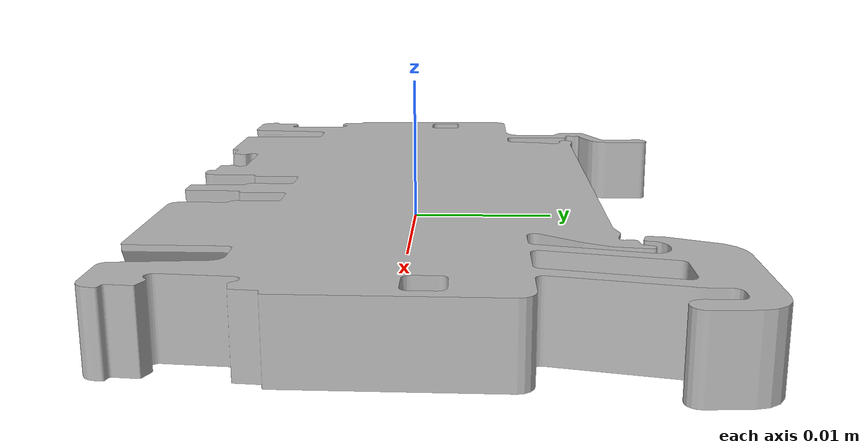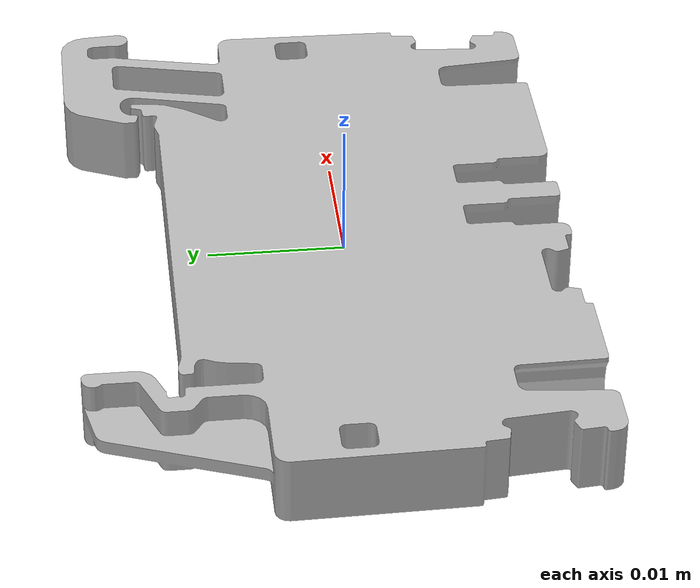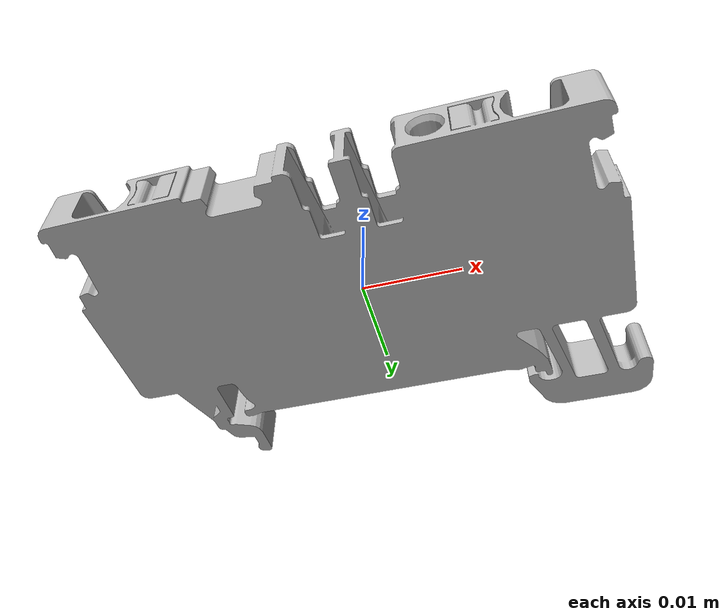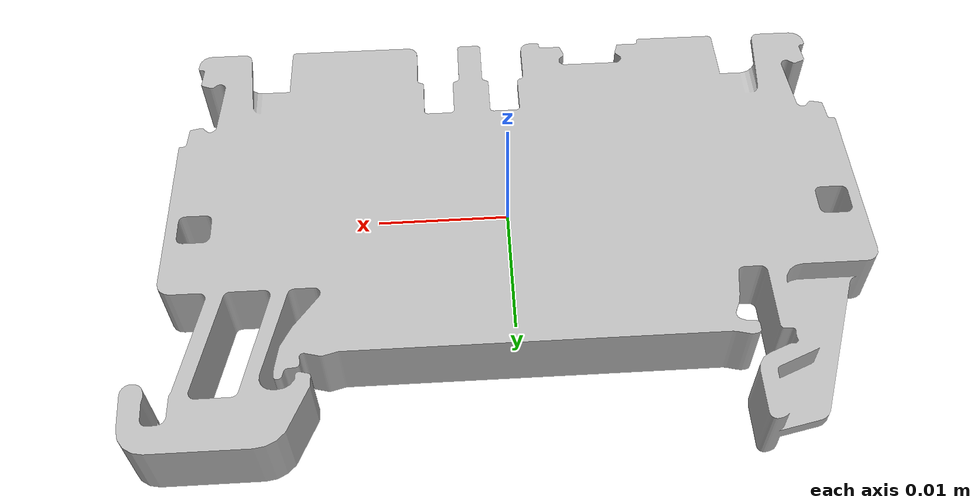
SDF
<?xml version="1.0" ?>
<sdf version="1.5">
    <model name="clamp_1_marker_10">
        <link name="clamp">
            <!-- initial pose: centered, no rotation -->
            <pose>0 0 0 0 0 0</pose>

            <!-- the collision of the clamp -->
            <collision name="clamp_collision">
                <geometry>
                    <mesh>
                        <uri>clamp_1_marker_10.obj</uri>
                    </mesh>
                </geometry>
            </collision>

            <!-- the visual of the clamp-->
            <visual name="clamp_visual">
                <geometry>
                    <mesh>
                        <uri>clamp_1_marker_10.obj</uri>
                    </mesh>
                </geometry>
            </visual>
        </link>
    </model>
</sdf>
